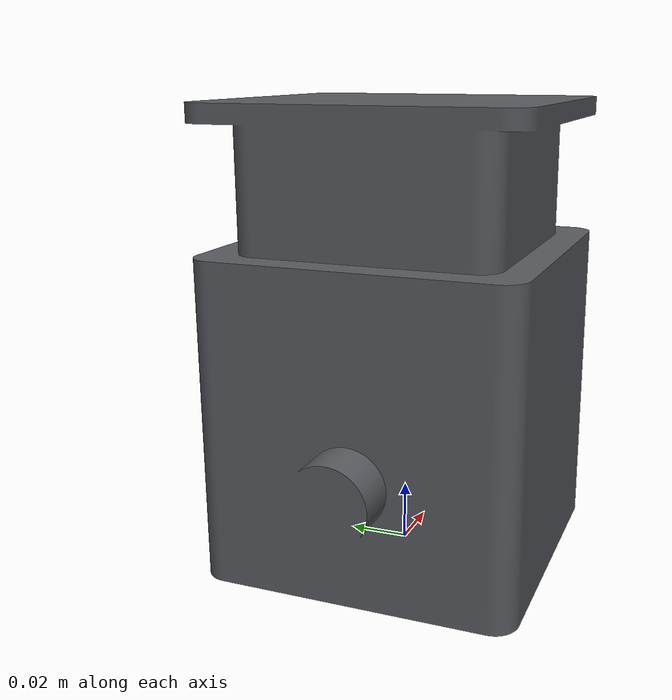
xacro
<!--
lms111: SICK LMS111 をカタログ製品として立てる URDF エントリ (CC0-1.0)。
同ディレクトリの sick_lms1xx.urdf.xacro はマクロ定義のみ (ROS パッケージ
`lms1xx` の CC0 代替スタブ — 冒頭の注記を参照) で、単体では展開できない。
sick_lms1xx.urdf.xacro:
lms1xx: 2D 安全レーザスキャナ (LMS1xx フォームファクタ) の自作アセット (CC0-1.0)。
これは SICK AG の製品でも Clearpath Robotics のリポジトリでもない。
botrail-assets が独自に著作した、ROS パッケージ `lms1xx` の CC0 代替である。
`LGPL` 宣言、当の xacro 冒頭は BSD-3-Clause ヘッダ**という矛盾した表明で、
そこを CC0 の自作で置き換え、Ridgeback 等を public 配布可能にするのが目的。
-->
<?xml version="1.0"?>
<robot name="lms111" xmlns:xacro="http://www.ros.org/wiki/xacro">

  <xacro:include filename="$(find lms1xx)/urdf/sick_lms1xx.urdf.xacro"/>

  <link name="mount"/>

  <joint name="mount_to_laser" type="fixed">
    <parent link="mount"/>
    <child link="laser"/>
    <origin xyz="0 0 0.102" rpy="0 0 0"/>
  </joint>

  <xacro:sick_lms1xx frame="laser"/>

</robot>

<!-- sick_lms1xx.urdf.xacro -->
<robot xmlns:xacro="http://www.ros.org/wiki/xacro">

  <xacro:macro name="sick_lms1xx"
    params="frame:=laser topic:=scan sample_size:=720 update_rate:=50
            min_angle:=-2.35619 max_angle:=2.35619 min_range:=0.1 max_range:=30.0
            robot_namespace:=/">

    <link name="${frame}">
      <inertial>
        <!-- 質量 1.1 kg は LMS1xx クラスの公表値。慣性は筐体枠の中実直方体近似 -->
        <mass value="1.1" />
        <origin xyz="0 0 -0.026" rpy="0 0 0" />
        <inertia
          ixx="${0.0833333 * 1.1 * (0.105*0.105 + 0.152*0.152)}" ixy="0.0" ixz="0.0"
          iyy="${0.0833333 * 1.1 * (0.102*0.102 + 0.152*0.152)}" iyz="0.0"
          izz="${0.0833333 * 1.1 * (0.102*0.102 + 0.105*0.105)}" />
      </inertial>
      <visual>
        <!-- メッシュの原点は焦点。tools/generate_meshes.py で生成 -->
        <origin xyz="0 0 0" rpy="0 0 0" />
        <geometry>
          <mesh filename="package://lms1xx/meshes/sick-lms1xx.stl" />
        </geometry>
        <material name="lms1xx_grey">
          <color rgba="0.35 0.36 0.38 1" />
        </material>
      </visual>
      <collision>
        <!-- 筐体枠そのままの箱。焦点は上端から 50 mm 下なので中心は -26 mm -->
        <origin xyz="0 0 -0.026" rpy="0 0 0" />
        <geometry>
          <box size="0.102 0.105 0.152" />
        </geometry>
      </collision>
    </link>

  </xacro:macro>
</robot>
